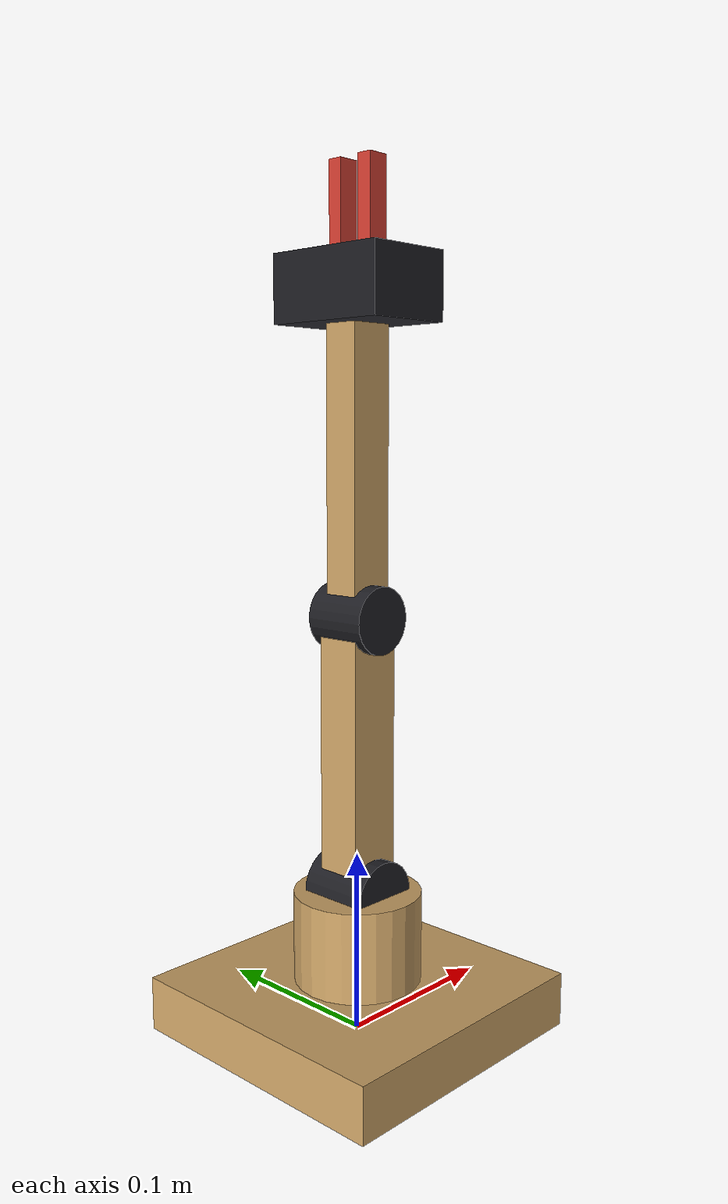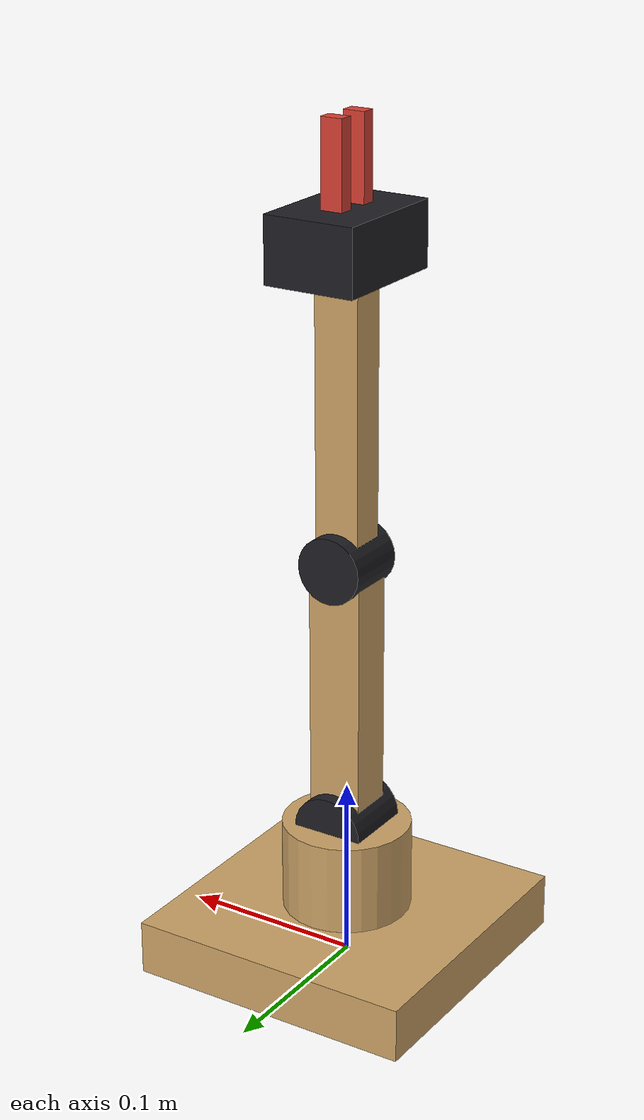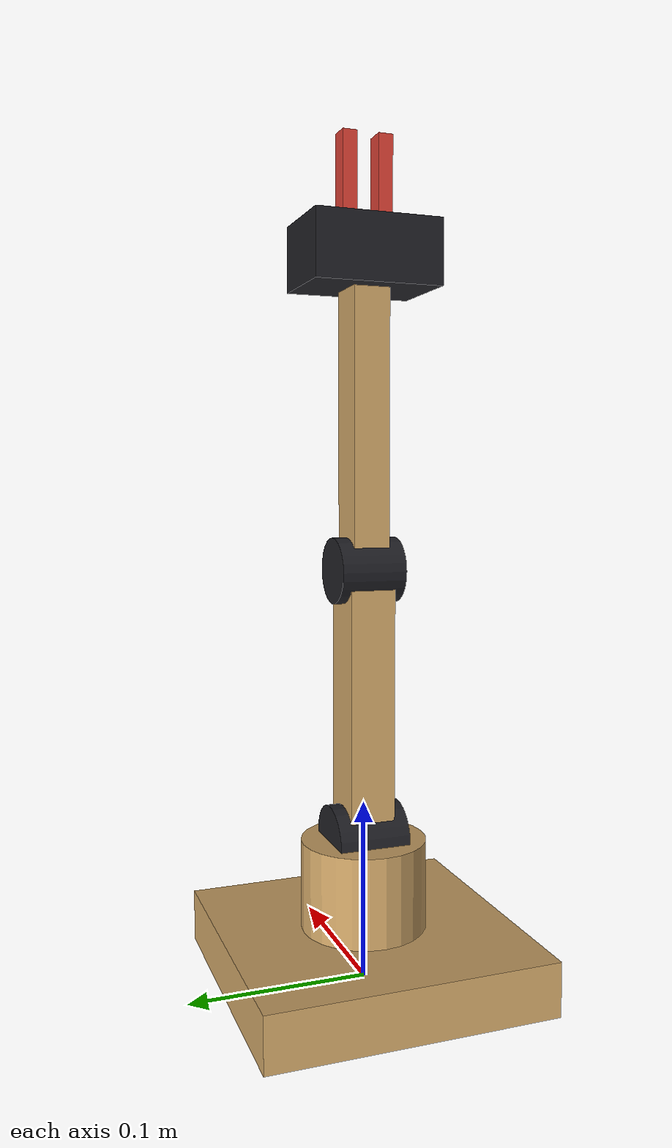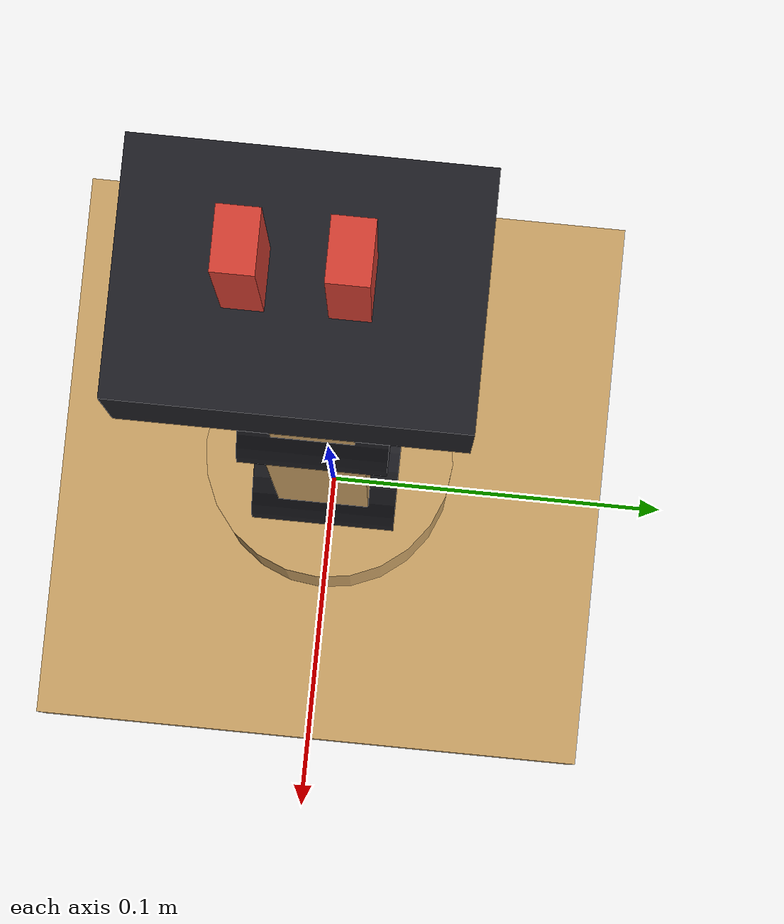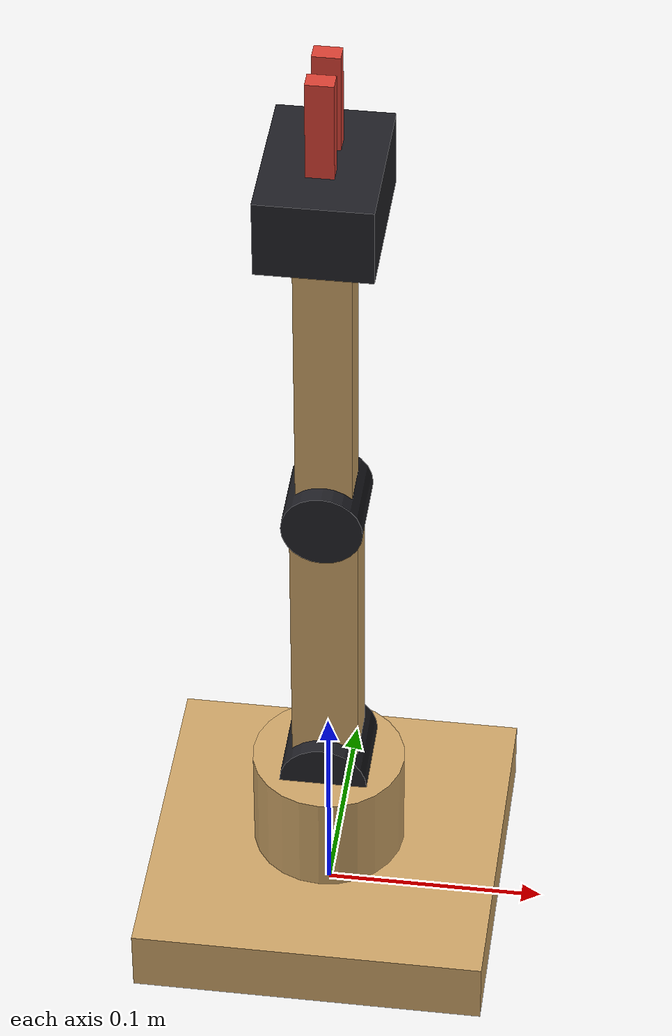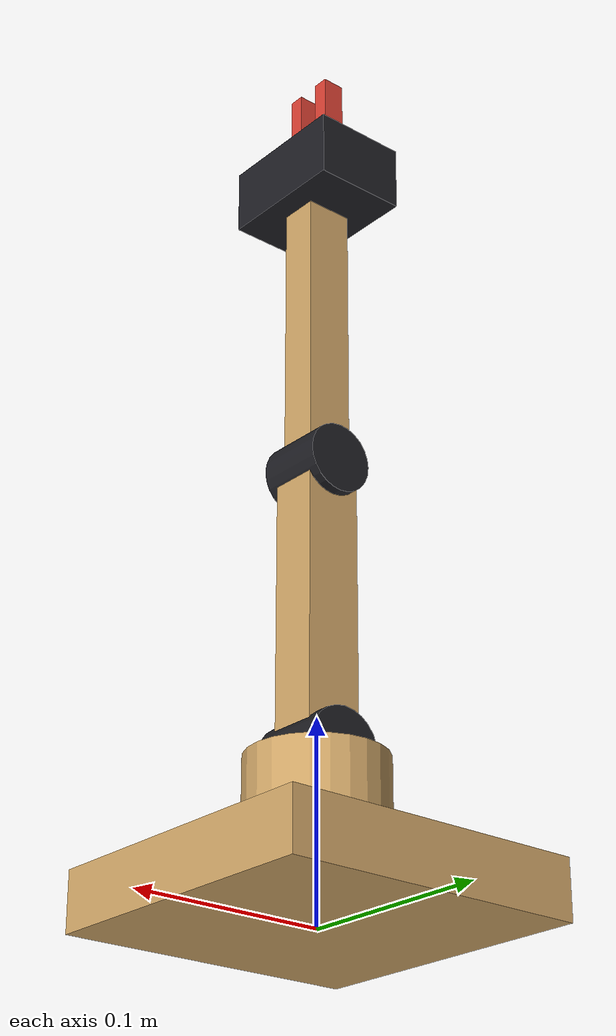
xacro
<?xml version="1.0"?>
<robot xmlns:xacro="http://www.ros.org/wiki/xacro" name="robot_arm">

  <xacro:arg name="use_sim" default="false"/>
  <xacro:arg name="controllers_file" default=""/>

  <!-- ===== Geometry (keep in sync with kinematics.py: ArmGeometry) ===== -->
  <xacro:property name="base_x" value="0.16"/>
  <xacro:property name="base_y" value="0.16"/>
  <xacro:property name="base_h" value="0.03"/>
  <xacro:property name="turret_r" value="0.035"/>
  <xacro:property name="turret_h" value="0.05"/>
  <xacro:property name="l_upper" value="0.15"/>
  <xacro:property name="l_fore" value="0.15"/>
  <xacro:property name="l_tool" value="0.08"/>
  <xacro:property name="palm_h" value="0.035"/>
  <xacro:property name="finger_len" value="0.045"/>

  <!-- ===== Limits (hobby servos: about +-90 degrees) ===== -->
  <xacro:property name="joint_range" value="1.5708"/>
  <xacro:property name="finger_travel" value="0.03"/>

  <!-- ===== Materials ===== -->
  <material name="wood"><color rgba="0.80 0.64 0.40 1.0"/></material>
  <material name="servo"><color rgba="0.12 0.12 0.14 1.0"/></material>
  <material name="grip"><color rgba="0.85 0.25 0.20 1.0"/></material>

  <!-- ===== Inertia helpers ===== -->
  <xacro:macro name="box_inertial" params="m x y z cz:=0">
    <inertial>
      <origin xyz="0 0 ${cz}" rpy="0 0 0"/>
      <mass value="${m}"/>
      <inertia ixx="${m/12*(y*y+z*z)}" ixy="0" ixz="0"
               iyy="${m/12*(x*x+z*z)}" iyz="0"
               izz="${m/12*(x*x+y*y)}"/>
    </inertial>
  </xacro:macro>

  <xacro:macro name="cyl_inertial" params="m r h cz:=0">
    <inertial>
      <origin xyz="0 0 ${cz}" rpy="0 0 0"/>
      <mass value="${m}"/>
      <inertia ixx="${m/12*(3*r*r+h*h)}" ixy="0" ixz="0"
               iyy="${m/12*(3*r*r+h*h)}" iyz="0"
               izz="${m*r*r/2}"/>
    </inertial>
  </xacro:macro>

  <!-- ===== World anchor (makes the base static in Gazebo) ===== -->
  <link name="world"/>
  <joint name="world_fixed" type="fixed">
    <parent link="world"/>
    <child link="base_link"/>
    <origin xyz="0 0 0" rpy="0 0 0"/>
  </joint>

  <!-- ===== Base plate ===== -->
  <link name="base_link">
    <visual>
      <origin xyz="0 0 ${base_h/2}" rpy="0 0 0"/>
      <geometry><box size="${base_x} ${base_y} ${base_h}"/></geometry>
      <material name="wood"/>
    </visual>
    <collision>
      <origin xyz="0 0 ${base_h/2}" rpy="0 0 0"/>
      <geometry><box size="${base_x} ${base_y} ${base_h}"/></geometry>
    </collision>
    <xacro:box_inertial m="0.5" x="${base_x}" y="${base_y}" z="${base_h}" cz="${base_h/2}"/>
  </link>

  <!-- ===== Turret (rotates about z) ===== -->
  <link name="turret_link">
    <visual>
      <origin xyz="0 0 ${turret_h/2}" rpy="0 0 0"/>
      <geometry><cylinder radius="${turret_r}" length="${turret_h}"/></geometry>
      <material name="wood"/>
    </visual>
    <collision>
      <origin xyz="0 0 ${turret_h/2}" rpy="0 0 0"/>
      <geometry><cylinder radius="${turret_r}" length="${turret_h}"/></geometry>
    </collision>
    <xacro:cyl_inertial m="0.09" r="${turret_r}" h="${turret_h}" cz="${turret_h/2}"/>
  </link>

  <joint name="base_yaw_joint" type="revolute">
    <parent link="base_link"/>
    <child link="turret_link"/>
    <origin xyz="0 0 ${base_h}" rpy="0 0 0"/>
    <axis xyz="0 0 1"/>
    <limit lower="-${joint_range}" upper="${joint_range}" effort="1.0" velocity="2.0"/>
    <dynamics damping="0.3" friction="0.0"/>
  </joint>

  <!-- ===== Upper arm (shoulder joint at its origin) ===== -->
  <link name="upper_arm_link">
    <visual>
      <origin xyz="0 0 ${l_upper/2}" rpy="0 0 0"/>
      <geometry><box size="0.03 0.025 ${l_upper}"/></geometry>
      <material name="wood"/>
    </visual>
    <visual>
      <origin xyz="0 0 0" rpy="1.5708 0 0"/>
      <geometry><cylinder radius="0.02" length="0.04"/></geometry>
      <material name="servo"/>
    </visual>
    <collision>
      <origin xyz="0 0 ${l_upper/2}" rpy="0 0 0"/>
      <geometry><box size="0.03 0.025 ${l_upper}"/></geometry>
    </collision>
    <!-- plywood bar plus the elbow servo near the far end -->
    <xacro:box_inertial m="0.085" x="0.03" y="0.025" z="${l_upper}" cz="0.11"/>
  </link>

  <joint name="shoulder_joint" type="revolute">
    <parent link="turret_link"/>
    <child link="upper_arm_link"/>
    <origin xyz="0 0 ${turret_h}" rpy="0 0 0"/>
    <axis xyz="0 1 0"/>
    <limit lower="-${joint_range}" upper="${joint_range}" effort="1.0" velocity="2.0"/>
    <dynamics damping="0.3" friction="0.0"/>
  </joint>

  <!-- ===== Forearm (elbow joint at its origin) ===== -->
  <link name="forearm_link">
    <visual>
      <origin xyz="0 0 ${l_fore/2}" rpy="0 0 0"/>
      <geometry><box size="0.025 0.02 ${l_fore}"/></geometry>
      <material name="wood"/>
    </visual>
    <visual>
      <origin xyz="0 0 0" rpy="1.5708 0 0"/>
      <geometry><cylinder radius="0.018" length="0.036"/></geometry>
      <material name="servo"/>
    </visual>
    <collision>
      <origin xyz="0 0 ${l_fore/2}" rpy="0 0 0"/>
      <geometry><box size="0.025 0.02 ${l_fore}"/></geometry>
    </collision>
    <!-- plywood bar plus the wrist servo near the far end -->
    <xacro:box_inertial m="0.04" x="0.025" y="0.02" z="${l_fore}" cz="0.10"/>
  </link>

  <joint name="elbow_joint" type="revolute">
    <parent link="upper_arm_link"/>
    <child link="forearm_link"/>
    <origin xyz="0 0 ${l_upper}" rpy="0 0 0"/>
    <axis xyz="0 1 0"/>
    <limit lower="-${joint_range}" upper="${joint_range}" effort="1.0" velocity="2.0"/>
    <dynamics damping="0.2" friction="0.0"/>
  </joint>

  <!-- ===== Wrist and gripper palm (wrist joint at its origin) ===== -->
  <link name="wrist_link">
    <visual>
      <origin xyz="0 0 ${palm_h/2}" rpy="0 0 0"/>
      <geometry><box size="0.05 0.07 ${palm_h}"/></geometry>
      <material name="servo"/>
    </visual>
    <collision>
      <origin xyz="0 0 ${palm_h/2}" rpy="0 0 0"/>
      <geometry><box size="0.05 0.07 ${palm_h}"/></geometry>
    </collision>
    <xacro:box_inertial m="0.055" x="0.05" y="0.07" z="${palm_h}" cz="0.03"/>
  </link>

  <joint name="wrist_joint" type="revolute">
    <parent link="forearm_link"/>
    <child link="wrist_link"/>
    <origin xyz="0 0 ${l_fore}" rpy="0 0 0"/>
    <axis xyz="0 1 0"/>
    <limit lower="-${joint_range}" upper="${joint_range}" effort="0.5" velocity="2.0"/>
    <dynamics damping="0.1" friction="0.0"/>
  </joint>

  <!-- ===== Gripper fingers (0 = closed, finger_travel = fully open) ===== -->
  <xacro:macro name="finger" params="side y_offset axis_y">
    <link name="finger_${side}_link">
      <visual>
        <origin xyz="0 0 ${finger_len/2}" rpy="0 0 0"/>
        <geometry><box size="0.012 0.008 ${finger_len}"/></geometry>
        <material name="grip"/>
      </visual>
      <collision>
        <origin xyz="0 0 ${finger_len/2}" rpy="0 0 0"/>
        <geometry><box size="0.012 0.008 ${finger_len}"/></geometry>
      </collision>
      <xacro:box_inertial m="0.01" x="0.012" y="0.008" z="${finger_len}" cz="${finger_len/2}"/>
    </link>
    <joint name="finger_${side}_joint" type="prismatic">
      <parent link="wrist_link"/>
      <child link="finger_${side}_link"/>
      <origin xyz="0 ${y_offset} ${palm_h}" rpy="0 0 0"/>
      <axis xyz="0 ${axis_y} 0"/>
      <limit lower="0.0" upper="${finger_travel}" effort="5.0" velocity="0.1"/>
      <dynamics damping="1.0" friction="0.0"/>
    </joint>
    <gazebo reference="finger_${side}_link">
      <mu1>1.5</mu1>
      <mu2>1.5</mu2>
    </gazebo>
  </xacro:macro>

  <xacro:finger side="left" y_offset="0.010" axis_y="1"/>
  <xacro:finger side="right" y_offset="-0.010" axis_y="-1"/>

  <!-- ===== Tool tip (centre between the fingertips) ===== -->
  <link name="tool_tip"/>
  <joint name="tool_tip_joint" type="fixed">
    <parent link="wrist_link"/>
    <child link="tool_tip"/>
    <origin xyz="0 0 ${l_tool}" rpy="0 0 0"/>
  </joint>

  <!-- ===== ros2_control + Gazebo (only when simulating) ===== -->
  <xacro:if value="$(arg use_sim)">
    <xacro:include filename="$(find robot_arm_description)/urdf/robot_arm.ros2_control.xacro"/>
    <xacro:robot_arm_ros2_control controllers_file="$(arg controllers_file)"/>
  </xacro:if>

</robot>
